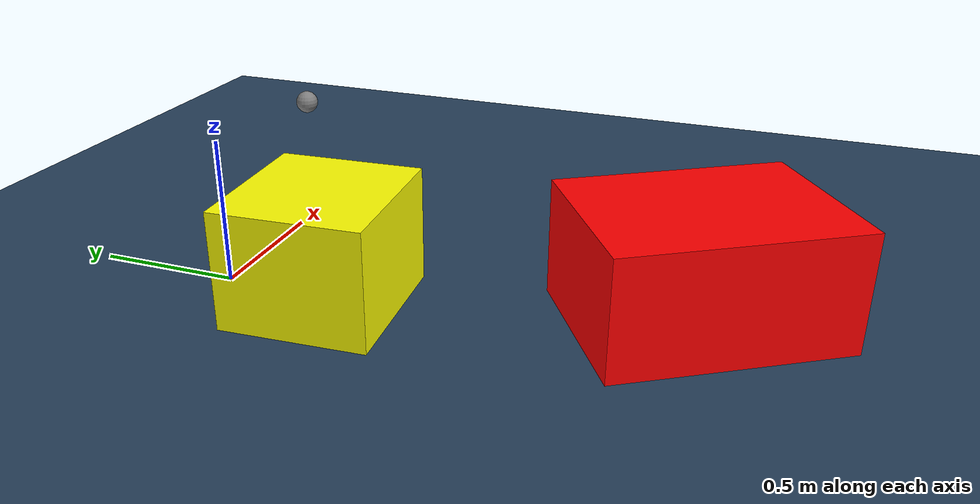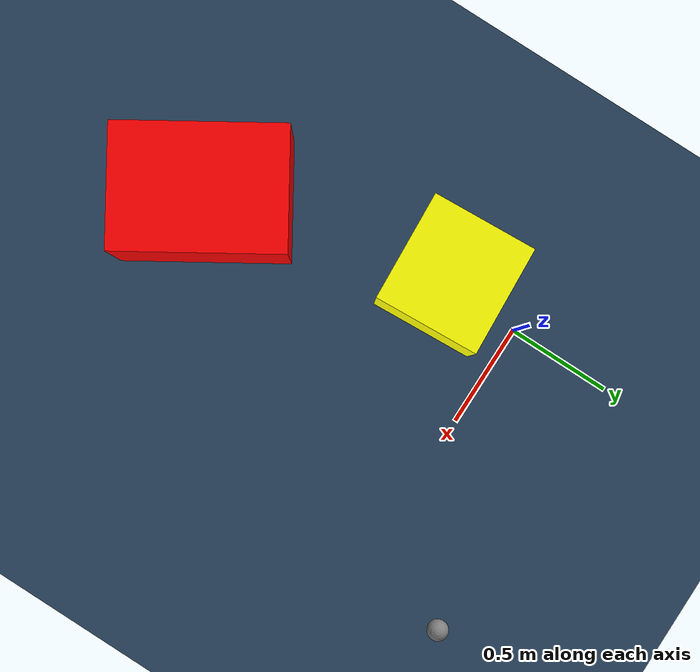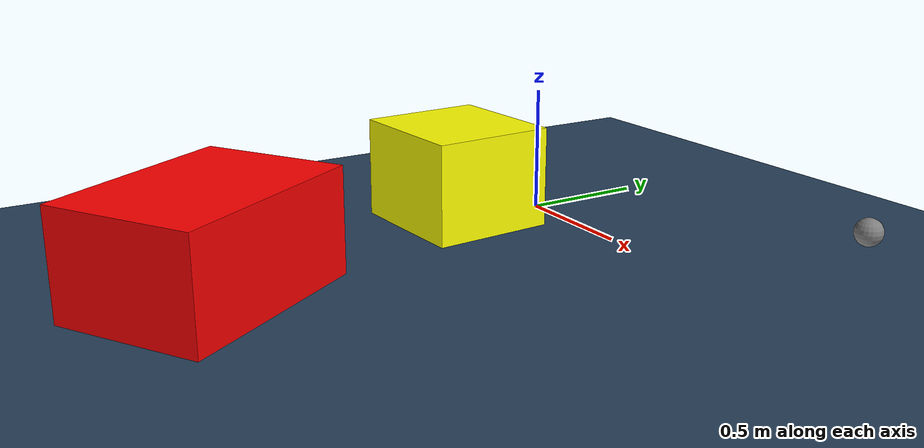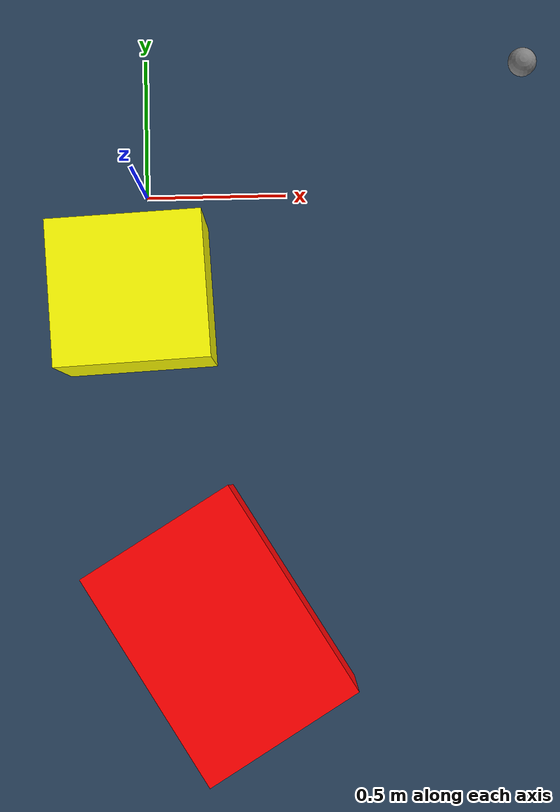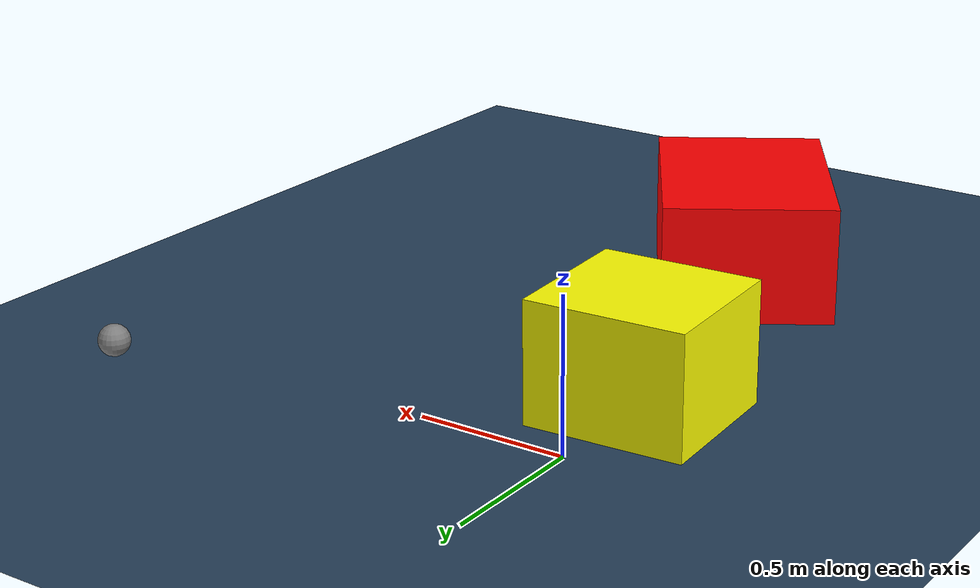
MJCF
<?xml version="1.0" ?>
<mujoco model="generated_environment">
  <option timestep="0.01" integrator="RK4" cone="elliptic"/>
  <default>
    <geom density="1"/>
  </default>
  <asset>
    <texture builtin="gradient" height="3072" rgb1="0.3 0.5 0.7" rgb2="0 0 0" type="skybox" width="512"/>
    <texture builtin="checker" height="300" mark="edge" markrgb="0.8 0.8 0.8" name="groundplane" rgb1="0.2 0.3 0.4" rgb2="0.1 0.2 0.3" type="2d" width="300"/>
    <material name="groundplane" reflectance="0.2" texrepeat="5 5" texture="groundplane" texuniform="true"/>
    <material name="robot" rgba="0.0 1.0 0.0 1"/>
  </asset>
  <worldbody>
    <light dir="0 0 -1" directional="true" pos="0 0 1.5"/>
    <geom condim="4" friction="1.0 0.005 0.001" material="groundplane" name="floor" size="0 0 0.05" type="plane"/>
    <body name="walls"/>
    <body name="robot">
      <joint name="joint_x" type="slide" pos="0 0 0" axis="1 0 0"/>
      <joint name="joint_y" type="slide" pos="0 0 0" axis="0 1 0"/>
      <geom name="robot" type="sphere" pos="1.336337381259404 0.4179730867379634 0.2" size="0.05" mass="5." friction="1.0 0.005 0.0001" condim="4"/>
      <site name="sensor_ball"/>
    </body>
    <body name="obstacle_1_movable">
      <geom name="obstacle_1_movable" condim="4" pos="-0.030067101223986148 -0.3805329927769443 0.2" euler="0 0 3.1383470265031077" friction="1.0 0.005 0.001" rgba="1 1 0 1" size="0.2630554908760653 0.2493027819882248 0.2" type="box" mass="0.1"/>
      <joint type="free"/>
    </body>
    <body name="obstacle_2_static">
      <geom name="obstacle_2_static" condim="4" pos="0.2606362174828145 -1.5323146161944832 0.2" euler="0 0 301.6406727874495" friction="1.0 0.005 0.001" rgba="1 0 0 1" size="0.4000678922675722 0.2884035412848184 0.2" type="box"/>
    </body>
  </worldbody>
  <actuator>
    <motor name="actuator_x" joint="joint_x" gear="1" ctrlrange="-1 1"/>
    <motor name="actuator_y" joint="joint_y" gear="1" ctrlrange="-1 1"/>
  </actuator>
</mujoco>
